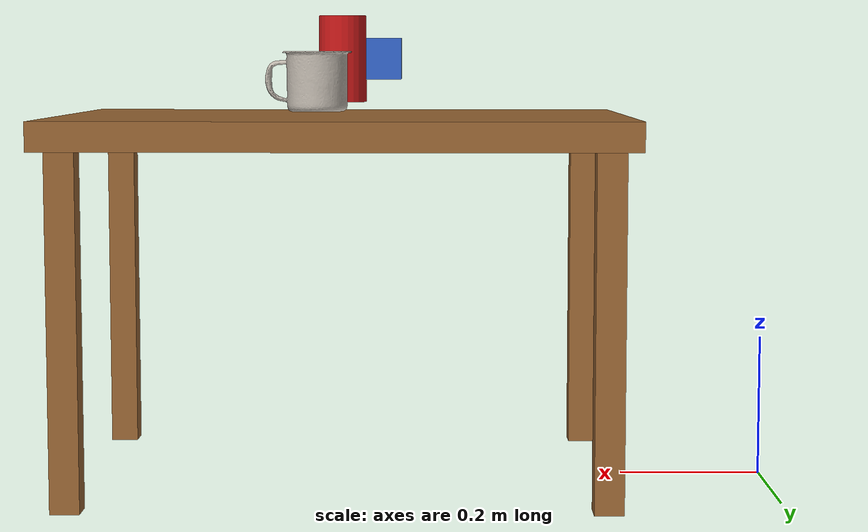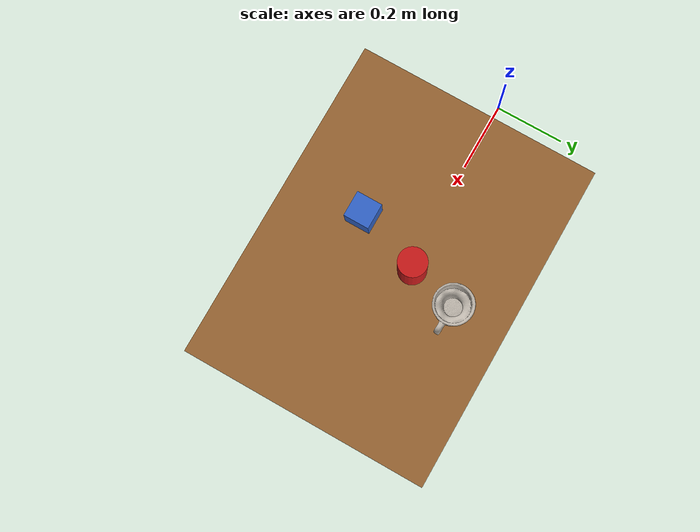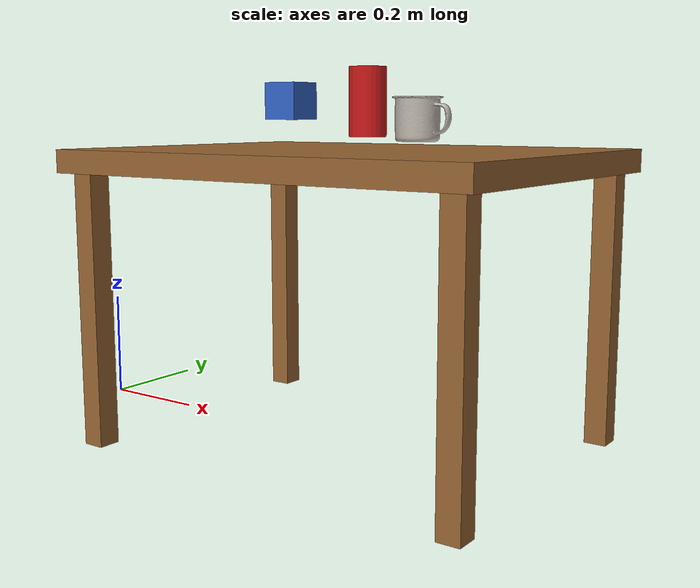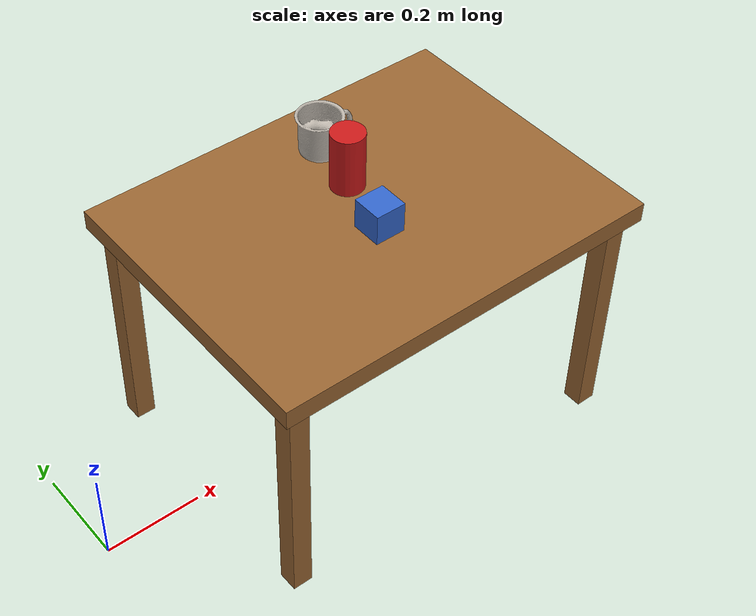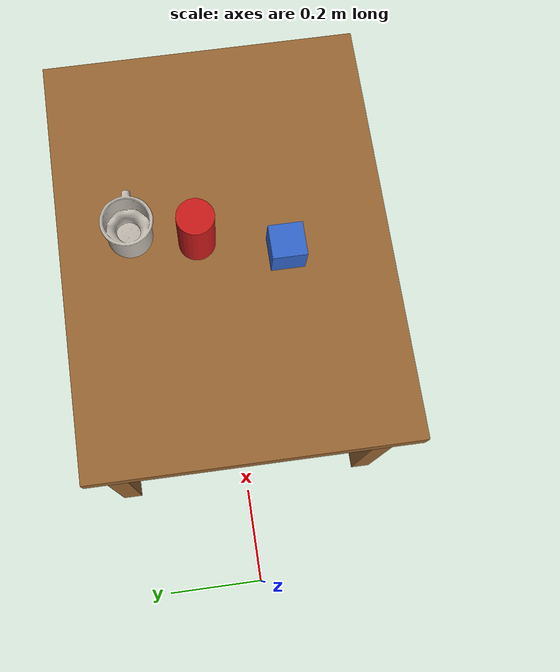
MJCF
<mujoco model="props">
  <asset>
    <material name="wood" rgba="0.6 0.4 0.2 1"/>
    <material name="can" rgba="0.8 0.1 0.1 1"/>
    <material name="box_item" rgba="0.2 0.4 0.8 1"/>

    <!-- YCB 025_mug (google_16k), decomposed with obj2mjcf/CoACD into 8 convex collision parts. -->
    <texture type="2d" name="mug_texture" file="mug_texture.png"/>
    <material name="mug_material" texture="mug_texture" specular="0.5" shininess="0.5"/>
    <mesh name="mug_visual" file="mug_visual.obj"/>
    <mesh name="mug_collision_0" file="mug_collision_0.obj"/>
    <mesh name="mug_collision_1" file="mug_collision_1.obj"/>
    <mesh name="mug_collision_2" file="mug_collision_2.obj"/>
    <mesh name="mug_collision_3" file="mug_collision_3.obj"/>
    <mesh name="mug_collision_4" file="mug_collision_4.obj"/>
    <mesh name="mug_collision_5" file="mug_collision_5.obj"/>
    <mesh name="mug_collision_6" file="mug_collision_6.obj"/>
    <mesh name="mug_collision_7" file="mug_collision_7.obj"/>
  </asset>

  <worldbody>
    <!-- Table: static. Top + four legs as boxes. Top surface at z=0.5. -->
    <body name="table" pos="0.6 0 0">
      <geom name="table_top" type="box" size="0.4 0.3 0.02" pos="0 0 0.5"
            material="wood" contype="1" conaffinity="1" condim="4" friction="1 0.01 0.01"/>
      <geom name="table_leg1" type="box" size="0.02 0.02 0.25" pos=" 0.36  0.26 0.25" material="wood"/>
      <geom name="table_leg2" type="box" size="0.02 0.02 0.25" pos="-0.36  0.26 0.25" material="wood"/>
      <geom name="table_leg3" type="box" size="0.02 0.02 0.25" pos=" 0.36 -0.26 0.25" material="wood"/>
      <geom name="table_leg4" type="box" size="0.02 0.02 0.25" pos="-0.36 -0.26 0.25" material="wood"/>
    </body>

    <!-- Grasp target 1: can. Dynamic freejoint, drops onto table top. -->
    <body name="can1" pos="0.6 0.05 0.6">
      <freejoint/>
      <geom name="can1_geom" type="cylinder" size="0.033 0.06"
            material="can" mass="0.4" contype="1" conaffinity="1"/>
    </body>

    <!-- Grasp target 2: small box. Dynamic freejoint. -->
    <body name="box1" pos="0.55 -0.1 0.6">
      <freejoint/>
      <geom name="box1_geom" type="box" size="0.03 0.03 0.03"
            material="box_item" mass="0.2" contype="1" conaffinity="1"/>
    </body>

    <body name="mug1" pos="0.65 0.15 0.53">
      <freejoint/>
      <geom name="mug1_visual" type="mesh" mesh="mug_visual" material="mug_material"
            contype="0" conaffinity="0" density="0" group="2"/>
      <geom name="mug1_collision_0" type="mesh" mesh="mug_collision_0" mass="0.35"
            contype="1" conaffinity="1" group="3" rgba="1 1 1 0" condim="4" friction="1 0.01 0.01"/>
      <geom name="mug1_collision_1" type="mesh" mesh="mug_collision_1"
            contype="1" conaffinity="1" group="3" rgba="1 1 1 0" condim="4" friction="1 0.01 0.01"/>
      <geom name="mug1_collision_2" type="mesh" mesh="mug_collision_2"
            contype="1" conaffinity="1" group="3" rgba="1 1 1 0" condim="4" friction="1 0.01 0.01"/>
      <geom name="mug1_collision_3" type="mesh" mesh="mug_collision_3"
            contype="1" conaffinity="1" group="3" rgba="1 1 1 0" condim="4" friction="1 0.01 0.01"/>
      <geom name="mug1_collision_4" type="mesh" mesh="mug_collision_4"
            contype="1" conaffinity="1" group="3" rgba="1 1 1 0" condim="4" friction="1 0.01 0.01"/>
      <geom name="mug1_collision_5" type="mesh" mesh="mug_collision_5"
            contype="1" conaffinity="1" group="3" rgba="1 1 1 0" condim="4" friction="1 0.01 0.01"/>
      <geom name="mug1_collision_6" type="mesh" mesh="mug_collision_6"
            contype="1" conaffinity="1" group="3" rgba="1 1 1 0" condim="4" friction="1 0.01 0.01"/>
      <geom name="mug1_collision_7" type="mesh" mesh="mug_collision_7"
            contype="1" conaffinity="1" group="3" rgba="1 1 1 0" condim="4" friction="1 0.01 0.01"/>
    </body>
  </worldbody>
</mujoco>
